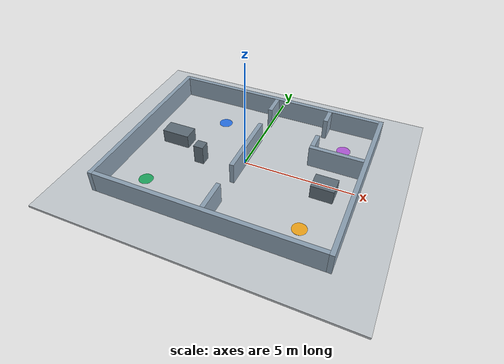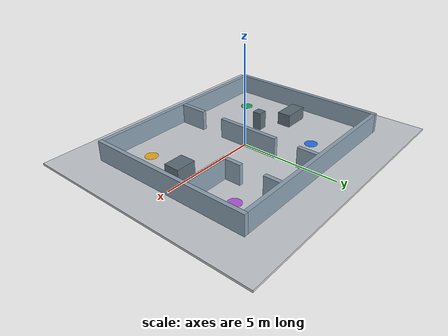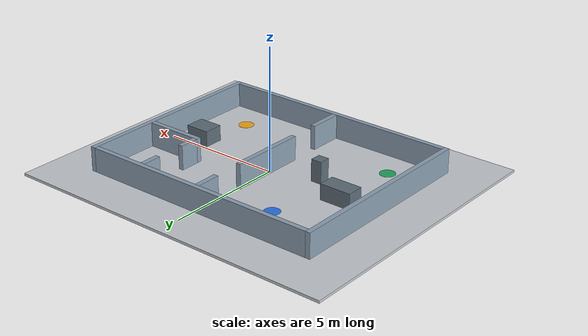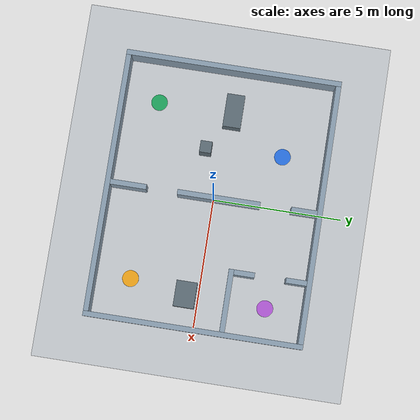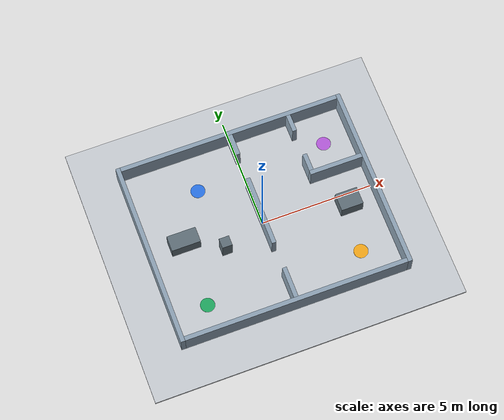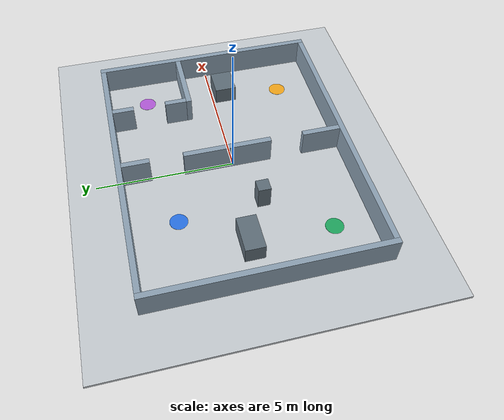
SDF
<?xml version='1.0' encoding='utf-8'?>
<sdf version="1.9">
  <world name="nav_lab">
    <physics name="physics" type="ignored">
      <max_step_size>0.001</max_step_size>
      <real_time_factor>1</real_time_factor>
    </physics>
    <plugin filename="gz-sim-physics-system" name="gz::sim::systems::Physics" />
    <plugin filename="gz-sim-user-commands-system" name="gz::sim::systems::UserCommands" />
    <plugin filename="gz-sim-scene-broadcaster-system" name="gz::sim::systems::SceneBroadcaster" />
    <plugin filename="gz-sim-sensors-system" name="gz::sim::systems::Sensors">
      <render_engine>ogre2</render_engine>
    </plugin>
    <plugin filename="gz-sim-imu-system" name="gz::sim::systems::Imu" />
    <light name="sun" type="directional">
      <pose>0 0 8 0 0 0</pose>
      <cast_shadows>false</cast_shadows>
      <diffuse>.85 .85 .85 1</diffuse>
      <specular>.1 .1 .1 1</specular>
      <direction>-.4 .2 -1</direction>
    </light>
    <scene>
      <ambient>.65 .65 .65 1</ambient>
      <background>.88 .91 .95 1</background>
    </scene>
    <model name="ground">
      <static>true</static>
      <pose>0 0 -.05 0 0 0</pose>
      <link name="body">
        <collision name="collision">
          <geometry>
            <box>
              <size>14 12 0.1</size>
            </box>
          </geometry>
        </collision>
        <visual name="visual">
          <geometry>
            <box>
              <size>14 12 0.1</size>
            </box>
          </geometry>
          <material>
            <ambient>0.78 0.8 0.82 1</ambient>
            <diffuse>0.78 0.8 0.82 1</diffuse>
          </material>
        </visual>
      </link>
    </model>
    <model name="wall_west">
      <static>true</static>
      <pose>-5.1 0.0 0.5 0 0 0</pose>
      <link name="body">
        <collision name="collision">
          <geometry>
            <box>
              <size>0.2 8.4 1.0</size>
            </box>
          </geometry>
        </collision>
        <visual name="visual">
          <geometry>
            <box>
              <size>0.2 8.4 1.0</size>
            </box>
          </geometry>
          <material>
            <ambient>0.55 0.63 0.7 1</ambient>
            <diffuse>0.55 0.63 0.7 1</diffuse>
          </material>
        </visual>
      </link>
    </model>
    <model name="wall_east">
      <static>true</static>
      <pose>5.1 0.0 0.5 0 0 0</pose>
      <link name="body">
        <collision name="collision">
          <geometry>
            <box>
              <size>0.2 8.4 1.0</size>
            </box>
          </geometry>
        </collision>
        <visual name="visual">
          <geometry>
            <box>
              <size>0.2 8.4 1.0</size>
            </box>
          </geometry>
          <material>
            <ambient>0.55 0.63 0.7 1</ambient>
            <diffuse>0.55 0.63 0.7 1</diffuse>
          </material>
        </visual>
      </link>
    </model>
    <model name="wall_north">
      <static>true</static>
      <pose>0.0 4.1 0.5 0 0 0</pose>
      <link name="body">
        <collision name="collision">
          <geometry>
            <box>
              <size>10.0 0.2 1.0</size>
            </box>
          </geometry>
        </collision>
        <visual name="visual">
          <geometry>
            <box>
              <size>10.0 0.2 1.0</size>
            </box>
          </geometry>
          <material>
            <ambient>0.55 0.63 0.7 1</ambient>
            <diffuse>0.55 0.63 0.7 1</diffuse>
          </material>
        </visual>
      </link>
    </model>
    <model name="wall_south">
      <static>true</static>
      <pose>0.0 -4.1 0.5 0 0 0</pose>
      <link name="body">
        <collision name="collision">
          <geometry>
            <box>
              <size>10.0 0.2 1.0</size>
            </box>
          </geometry>
        </collision>
        <visual name="visual">
          <geometry>
            <box>
              <size>10.0 0.2 1.0</size>
            </box>
          </geometry>
          <material>
            <ambient>0.55 0.63 0.7 1</ambient>
            <diffuse>0.55 0.63 0.7 1</diffuse>
          </material>
        </visual>
      </link>
    </model>
    <model name="divider_south">
      <static>true</static>
      <pose>0.0 -3.3 0.5 0 0 0</pose>
      <link name="body">
        <collision name="collision">
          <geometry>
            <box>
              <size>0.2 1.4 1.0</size>
            </box>
          </geometry>
        </collision>
        <visual name="visual">
          <geometry>
            <box>
              <size>0.2 1.4 1.0</size>
            </box>
          </geometry>
          <material>
            <ambient>0.55 0.63 0.7 1</ambient>
            <diffuse>0.55 0.63 0.7 1</diffuse>
          </material>
        </visual>
      </link>
    </model>
    <model name="divider_middle">
      <static>true</static>
      <pose>0.0 0.2 0.5 0 0 0</pose>
      <link name="body">
        <collision name="collision">
          <geometry>
            <box>
              <size>0.2 3.2 1.0</size>
            </box>
          </geometry>
        </collision>
        <visual name="visual">
          <geometry>
            <box>
              <size>0.2 3.2 1.0</size>
            </box>
          </geometry>
          <material>
            <ambient>0.55 0.63 0.7 1</ambient>
            <diffuse>0.55 0.63 0.7 1</diffuse>
          </material>
        </visual>
      </link>
    </model>
    <model name="divider_north">
      <static>true</static>
      <pose>0.0 3.5 0.5 0 0 0</pose>
      <link name="body">
        <collision name="collision">
          <geometry>
            <box>
              <size>0.2 1.0 1.0</size>
            </box>
          </geometry>
        </collision>
        <visual name="visual">
          <geometry>
            <box>
              <size>0.2 1.0 1.0</size>
            </box>
          </geometry>
          <material>
            <ambient>0.55 0.63 0.7 1</ambient>
            <diffuse>0.55 0.63 0.7 1</diffuse>
          </material>
        </visual>
      </link>
    </model>
    <model name="b_room_south">
      <static>true</static>
      <pose>3.8 1.1 0.5 0 0 0</pose>
      <link name="body">
        <collision name="collision">
          <geometry>
            <box>
              <size>2.4 0.2 1.0</size>
            </box>
          </geometry>
        </collision>
        <visual name="visual">
          <geometry>
            <box>
              <size>2.4 0.2 1.0</size>
            </box>
          </geometry>
          <material>
            <ambient>0.55 0.63 0.7 1</ambient>
            <diffuse>0.55 0.63 0.7 1</diffuse>
          </material>
        </visual>
      </link>
    </model>
    <model name="b_room_door_lower">
      <static>true</static>
      <pose>2.7 1.6 0.5 0 0 0</pose>
      <link name="body">
        <collision name="collision">
          <geometry>
            <box>
              <size>0.2 0.8 1.0</size>
            </box>
          </geometry>
        </collision>
        <visual name="visual">
          <geometry>
            <box>
              <size>0.2 0.8 1.0</size>
            </box>
          </geometry>
          <material>
            <ambient>0.55 0.63 0.7 1</ambient>
            <diffuse>0.55 0.63 0.7 1</diffuse>
          </material>
        </visual>
      </link>
    </model>
    <model name="b_room_door_upper">
      <static>true</static>
      <pose>2.7 3.6 0.5 0 0 0</pose>
      <link name="body">
        <collision name="collision">
          <geometry>
            <box>
              <size>0.2 0.8 1.0</size>
            </box>
          </geometry>
        </collision>
        <visual name="visual">
          <geometry>
            <box>
              <size>0.2 0.8 1.0</size>
            </box>
          </geometry>
          <material>
            <ambient>0.55 0.63 0.7 1</ambient>
            <diffuse>0.55 0.63 0.7 1</diffuse>
          </material>
        </visual>
      </link>
    </model>
    <model name="left_shelf">
      <static>true</static>
      <pose>-3.5 0.25 0.325 0 0 0</pose>
      <link name="body">
        <collision name="collision">
          <geometry>
            <box>
              <size>1.3 0.7 0.65</size>
            </box>
          </geometry>
        </collision>
        <visual name="visual">
          <geometry>
            <box>
              <size>1.3 0.7 0.65</size>
            </box>
          </geometry>
          <material>
            <ambient>0.37 0.43 0.47 1</ambient>
            <diffuse>0.37 0.43 0.47 1</diffuse>
          </material>
        </visual>
      </link>
    </model>
    <model name="right_shelf">
      <static>true</static>
      <pose>3.8 -0.5 0.325 0 0 0</pose>
      <link name="body">
        <collision name="collision">
          <geometry>
            <box>
              <size>1.0 0.8 0.65</size>
            </box>
          </geometry>
        </collision>
        <visual name="visual">
          <geometry>
            <box>
              <size>1.0 0.8 0.65</size>
            </box>
          </geometry>
          <material>
            <ambient>0.37 0.43 0.47 1</ambient>
            <diffuse>0.37 0.43 0.47 1</diffuse>
          </material>
        </visual>
      </link>
    </model>
    <model name="square_pillar">
      <static>true</static>
      <pose>-1.9 -0.6 0.45 0 0 0</pose>
      <link name="body">
        <collision name="collision">
          <geometry>
            <box>
              <size>0.45 0.45 0.9</size>
            </box>
          </geometry>
        </collision>
        <visual name="visual">
          <geometry>
            <box>
              <size>0.45 0.45 0.9</size>
            </box>
          </geometry>
          <material>
            <ambient>0.37 0.43 0.47 1</ambient>
            <diffuse>0.37 0.43 0.47 1</diffuse>
          </material>
        </visual>
      </link>
    </model>
    <model name="station_S">
      <static>true</static>
      <pose>-3.5 -2.7 .002 0 0 0</pose>
      <link name="marker">
        <visual name="floor_mark">
          <geometry>
            <cylinder>
              <radius>0.32</radius>
              <length>0.003</length>
            </cylinder>
          </geometry>
          <material>
            <ambient>0.12 0.65 0.37 1.0</ambient>
            <diffuse>0.12 0.65 0.37 1.0</diffuse>
          </material>
        </visual>
      </link>
    </model>
    <model name="station_A">
      <static>true</static>
      <pose>-2.1 2.4 .002 0 0 0</pose>
      <link name="marker">
        <visual name="floor_mark">
          <geometry>
            <cylinder>
              <radius>0.32</radius>
              <length>0.003</length>
            </cylinder>
          </geometry>
          <material>
            <ambient>0.16 0.45 0.9 1.0</ambient>
            <diffuse>0.16 0.45 0.9 1.0</diffuse>
          </material>
        </visual>
      </link>
    </model>
    <model name="station_B">
      <static>true</static>
      <pose>3.85 2.6 .002 0 0 0</pose>
      <link name="marker">
        <visual name="floor_mark">
          <geometry>
            <cylinder>
              <radius>0.32</radius>
              <length>0.003</length>
            </cylinder>
          </geometry>
          <material>
            <ambient>0.7 0.35 0.85 1.0</ambient>
            <diffuse>0.7 0.35 0.85 1.0</diffuse>
          </material>
        </visual>
      </link>
    </model>
    <model name="station_C">
      <static>true</static>
      <pose>3.5 -2.7 .002 0 0 0</pose>
      <link name="marker">
        <visual name="floor_mark">
          <geometry>
            <cylinder>
              <radius>0.32</radius>
              <length>0.003</length>
            </cylinder>
          </geometry>
          <material>
            <ambient>0.95 0.65 0.1 1.0</ambient>
            <diffuse>0.95 0.65 0.1 1.0</diffuse>
          </material>
        </visual>
      </link>
    </model>
  </world>
</sdf>
